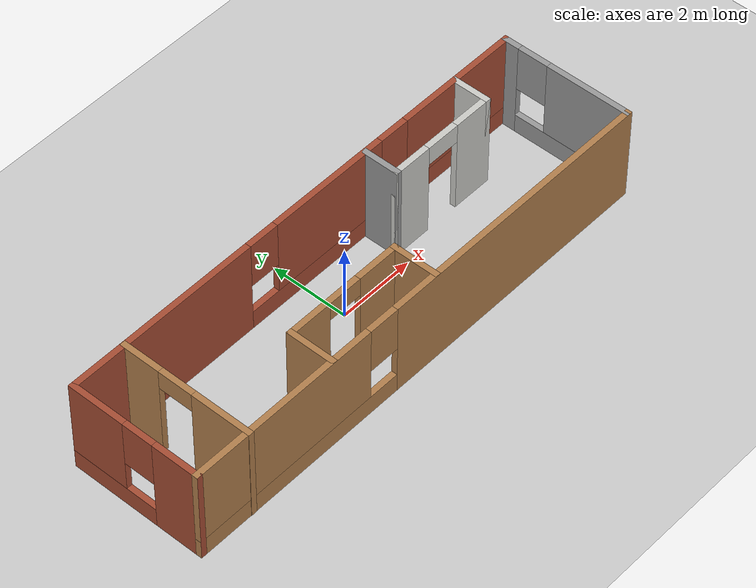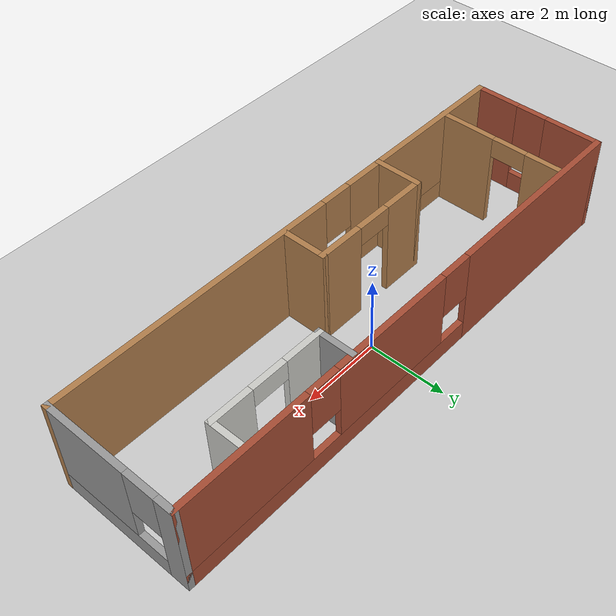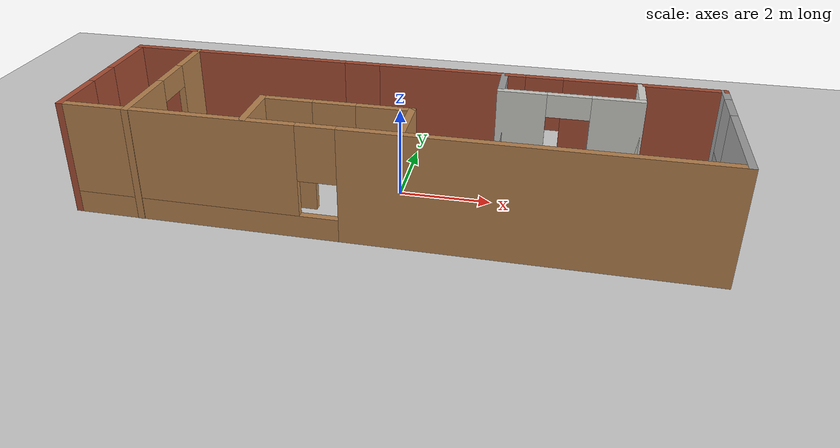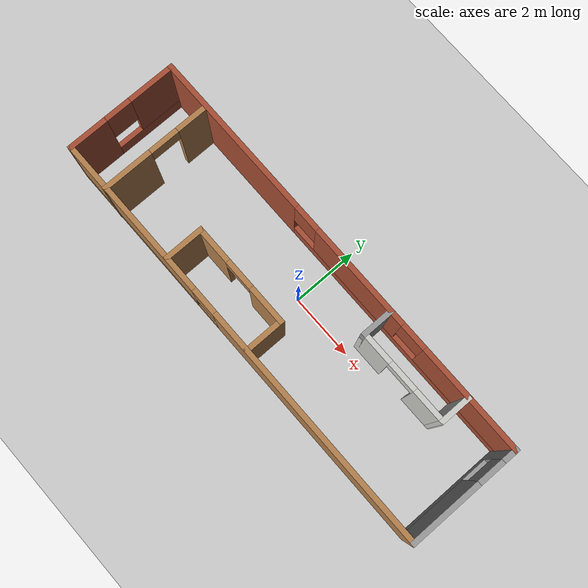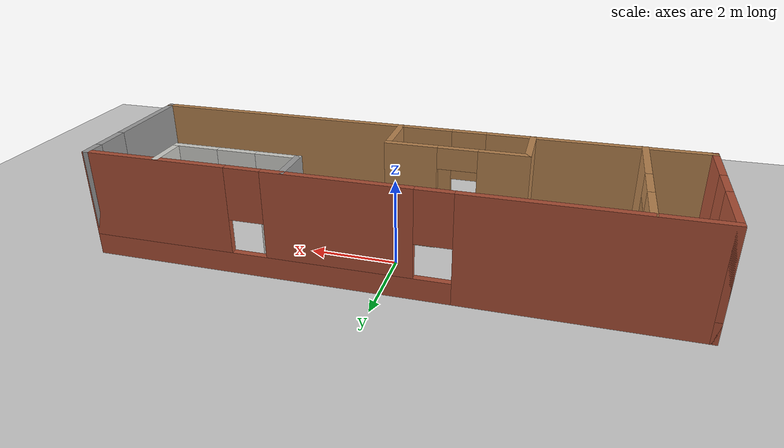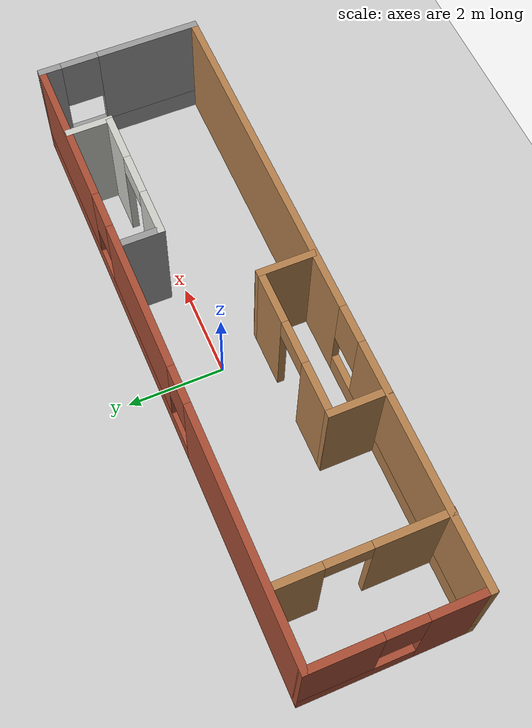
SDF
<sdf version="1.7">
 <world name="default">
  <light name="sun" type="directional">
   <pose>0 0 10 0 -0 0</pose>
   <diffuse>0.8 0.8 0.8 1</diffuse>
   <specular>0.2 0.2 0.2 1</specular>
   <attenuation>
    <range>1000</range>
    <constant>0.9</constant>
    <linear>0.01</linear>
    <quadratic>0.001</quadratic>
   </attenuation>
   <direction>-0.5 0.1 -0.9</direction>
   <spot><inner_angle>0</inner_angle><outer_angle>0</outer_angle><falloff>0</falloff></spot>
  </light>
  <model name="ground_plane">
   <static>1</static>
   <link name="link">
    <collision name="collision">
     <geometry><plane><normal>0 0 1</normal><size>100 100</size></plane></geometry>
     <surface>
      <contact><collide_bitmask>65535</collide_bitmask></contact>
      <friction><ode><mu>100</mu><mu2>50</mu2></ode></friction>
     </surface>
    </collision>
    <visual name="visual">
     <cast_shadows>0</cast_shadows>
     <geometry><plane><normal>0 0 1</normal><size>100 100</size></plane></geometry>
     <material>
      <script><uri>file://media/materials/scripts/gazebo.material</uri><name>Gazebo/Grey</name></script>
     </material>
    </visual>
   </link>
  </model>
  <gravity>0 0 -9.8</gravity>
  <magnetic_field>6e-06 2.3e-05 -4.2e-05</magnetic_field>
  <atmosphere type="adiabatic"/>
  <physics type="ode">
   <max_step_size>0.001</max_step_size>
   <real_time_factor>1</real_time_factor>
   <real_time_update_rate>1000</real_time_update_rate>
  </physics>
  <scene><ambient>0.4 0.4 0.4 1</ambient><background>0.7 0.7 0.7 1</background><shadows>1</shadows></scene>
  <spherical_coordinates>
   <surface_model>EARTH_WGS84</surface_model>
   <latitude_deg>0</latitude_deg>
   <longitude_deg>0</longitude_deg>
   <elevation>0</elevation>
   <heading_deg>0</heading_deg>
  </spherical_coordinates>
  <model name="Untitled">
   <pose>0.028454 -0.043117 0 0 -0 0</pose>
   <link name="Wall_0">
    <pose>-0 1.3025 0 0 -0 0</pose>
    <visual name="Wall_0_Visual_0">
     <pose>-4.0875 0 1.25 0 -0 0</pose>
     <geometry><box><size>5.075 0.15 2.5</size></box></geometry>
     <material>
      <script><uri>file://media/materials/scripts/gazebo.material</uri><name>Gazebo/Bricks</name></script>
      <ambient>1 1 1 1</ambient>
     </material>
     <meta><layer>0</layer></meta>
    </visual>
    <collision name="Wall_0_Collision_0">
     <geometry><box><size>5.075 0.15 2.5</size></box></geometry>
     <pose>-4.0875 0 1.25 0 -0 0</pose>
    </collision>
    <visual name="Wall_0_Visual_1">
     <pose>2.5375 0 0.25 0 -0 0</pose>
     <geometry><box><size>8.175 0.15 0.5</size></box></geometry>
     <material>
      <script><uri>file://media/materials/scripts/gazebo.material</uri><name>Gazebo/Bricks</name></script>
      <ambient>1 1 1 1</ambient>
     </material>
     <meta><layer>0</layer></meta>
    </visual>
    <collision name="Wall_0_Collision_1">
     <geometry><box><size>8.175 0.15 0.5</size></box></geometry>
     <pose>2.5375 0 0.25 0 -0 0</pose>
    </collision>
    <visual name="Wall_0_Visual_2">
     <pose>0.86 0 1.5 0 -0 0</pose>
     <geometry><box><size>3.22 0.15 2</size></box></geometry>
     <material>
      <script><uri>file://media/materials/scripts/gazebo.material</uri><name>Gazebo/Bricks</name></script>
      <ambient>1 1 1 1</ambient>
     </material>
     <meta><layer>0</layer></meta>
    </visual>
    <collision name="Wall_0_Collision_2">
     <geometry><box><size>3.22 0.15 2</size></box></geometry>
     <pose>0.86 0 1.5 0 -0 0</pose>
    </collision>
    <visual name="Wall_0_Visual_3">
     <pose>4.9475 0 1.5 0 -0 0</pose>
     <geometry><box><size>3.355 0.15 2</size></box></geometry>
     <material>
      <script><uri>file://media/materials/scripts/gazebo.material</uri><name>Gazebo/Bricks</name></script>
      <ambient>1 1 1 1</ambient>
     </material>
     <meta><layer>0</layer></meta>
    </visual>
    <collision name="Wall_0_Collision_3">
     <geometry><box><size>3.355 0.15 2</size></box></geometry>
     <pose>4.9475 0 1.5 0 -0 0</pose>
    </collision>
    <visual name="Wall_0_Visual_4">
     <pose>-1.15 0 1.9 0 -0 0</pose>
     <geometry><box><size>0.8 0.15 1.2</size></box></geometry>
     <material>
      <script><uri>file://media/materials/scripts/gazebo.material</uri><name>Gazebo/Bricks</name></script>
      <ambient>1 1 1 1</ambient>
     </material>
     <meta><layer>0</layer></meta>
    </visual>
    <collision name="Wall_0_Collision_4">
     <geometry><box><size>0.8 0.15 1.2</size></box></geometry>
     <pose>-1.15 0 1.9 0 -0 0</pose>
    </collision>
    <visual name="Wall_0_Visual_5">
     <pose>2.87 0 1.9 0 -0 0</pose>
     <geometry><box><size>0.8 0.15 1.2</size></box></geometry>
     <material>
      <script><uri>file://media/materials/scripts/gazebo.material</uri><name>Gazebo/Bricks</name></script>
      <ambient>1 1 1 1</ambient>
     </material>
     <meta><layer>0</layer></meta>
    </visual>
    <collision name="Wall_0_Collision_5">
     <geometry><box><size>0.8 0.15 1.2</size></box></geometry>
     <pose>2.87 0 1.9 0 -0 0</pose>
    </collision>
   </link>
   <link name="Wall_1">
    <pose>6.55 -0.3725 0 0 -0 -1.5708</pose>
    <visual name="Wall_1_Visual_0">
     <pose>-1.5075 0 1.25 0 -0 0</pose>
     <geometry><box><size>0.485 0.15 2.5</size></box></geometry>
     <material>
      <script><uri>file://media/materials/scripts/gazebo.material</uri><name>Gazebo/Grey</name></script>
      <ambient>1 1 1 1</ambient>
     </material>
     <meta><layer>0</layer></meta>
    </visual>
    <collision name="Wall_1_Collision_0">
     <geometry><box><size>0.485 0.15 2.5</size></box></geometry>
     <pose>-1.5075 0 1.25 0 -0 0</pose>
    </collision>
    <visual name="Wall_1_Visual_1">
     <pose>0.2425 0 0.25 0 -0 0</pose>
     <geometry><box><size>3.015 0.15 0.5</size></box></geometry>
     <material>
      <script><uri>file://media/materials/scripts/gazebo.material</uri><name>Gazebo/Grey</name></script>
      <ambient>1 1 1 1</ambient>
     </material>
     <meta><layer>0</layer></meta>
    </visual>
    <collision name="Wall_1_Collision_1">
     <geometry><box><size>3.015 0.15 0.5</size></box></geometry>
     <pose>0.2425 0 0.25 0 -0 0</pose>
    </collision>
    <visual name="Wall_1_Visual_2">
     <pose>0.6425 0 1.5 0 -0 0</pose>
     <geometry><box><size>2.215 0.15 2</size></box></geometry>
     <material>
      <script><uri>file://media/materials/scripts/gazebo.material</uri><name>Gazebo/Grey</name></script>
      <ambient>1 1 1 1</ambient>
     </material>
     <meta><layer>0</layer></meta>
    </visual>
    <collision name="Wall_1_Collision_2">
     <geometry><box><size>2.215 0.15 2</size></box></geometry>
     <pose>0.6425 0 1.5 0 -0 0</pose>
    </collision>
    <visual name="Wall_1_Visual_3">
     <pose>-0.865 0 1.9 0 -0 0</pose>
     <geometry><box><size>0.8 0.15 1.2</size></box></geometry>
     <material>
      <script><uri>file://media/materials/scripts/gazebo.material</uri><name>Gazebo/Grey</name></script>
      <ambient>1 1 1 1</ambient>
     </material>
     <meta><layer>0</layer></meta>
    </visual>
    <collision name="Wall_1_Collision_3">
     <geometry><box><size>0.8 0.15 1.2</size></box></geometry>
     <pose>-0.865 0 1.9 0 -0 0</pose>
    </collision>
   </link>
   <link name="Wall_11">
    <collision name="Wall_11_Collision">
     <geometry><box><size>1 0.15 2.5</size></box></geometry>
     <pose>0 0 1.25 0 -0 0</pose>
    </collision>
    <visual name="Wall_11_Visual">
     <pose>0 0 1.25 0 -0 0</pose>
     <geometry><box><size>1 0.15 2.5</size></box></geometry>
     <material>
      <script><uri>file://media/materials/scripts/gazebo.material</uri><name>Gazebo/Grey</name></script>
      <ambient>1 1 1 1</ambient>
     </material>
     <meta><layer>0</layer></meta>
    </visual>
    <pose>2.02 0.8575 0 0 -0 -1.5708</pose>
   </link>
   <link name="Wall_12">
    <pose>3.445 0.4325 0 0 -0 0</pose>
    <visual name="Wall_12_Visual_0">
     <pose>-0.9875 0 1.25 0 -0 0</pose>
     <geometry><box><size>1.025 0.15 2.5</size></box></geometry>
     <material>
      <script><uri>file://media/materials/scripts/gazebo.material</uri><name>Gazebo/CeilingTiled</name></script>
      <ambient>1 1 1 1</ambient>
     </material>
     <meta><layer>0</layer></meta>
    </visual>
    <collision name="Wall_12_Collision_0">
     <geometry><box><size>1.025 0.15 2.5</size></box></geometry>
     <pose>-0.9875 0 1.25 0 -0 0</pose>
    </collision>
    <visual name="Wall_12_Visual_1">
     <pose>0.9625 0 1.25 0 -0 0</pose>
     <geometry><box><size>1.075 0.15 2.5</size></box></geometry>
     <material>
      <script><uri>file://media/materials/scripts/gazebo.material</uri><name>Gazebo/CeilingTiled</name></script>
      <ambient>1 1 1 1</ambient>
     </material>
     <meta><layer>0</layer></meta>
    </visual>
    <collision name="Wall_12_Collision_1">
     <geometry><box><size>1.075 0.15 2.5</size></box></geometry>
     <pose>0.9625 0 1.25 0 -0 0</pose>
    </collision>
    <visual name="Wall_12_Visual_2">
     <pose>-0.025 0 2.25 0 -0 0</pose>
     <geometry><box><size>0.9 0.15 0.5</size></box></geometry>
     <material>
      <script><uri>file://media/materials/scripts/gazebo.material</uri><name>Gazebo/CeilingTiled</name></script>
      <ambient>1 1 1 1</ambient>
     </material>
     <meta><layer>0</layer></meta>
    </visual>
    <collision name="Wall_12_Collision_2">
     <geometry><box><size>0.9 0.15 0.5</size></box></geometry>
     <pose>-0.025 0 2.25 0 -0 0</pose>
    </collision>
   </link>
   <link name="Wall_13">
    <collision name="Wall_13_Collision">
     <geometry><box><size>1 0.15 2.5</size></box></geometry>
     <pose>0 0 1.25 0 -0 0</pose>
    </collision>
    <visual name="Wall_13_Visual">
     <pose>0 0 1.25 0 -0 0</pose>
     <geometry><box><size>1 0.15 2.5</size></box></geometry>
     <material>
      <script><uri>file://media/materials/scripts/gazebo.material</uri><name>Gazebo/CeilingTiled</name></script>
      <ambient>1 1 1 1</ambient>
     </material>
     <meta><layer>0</layer></meta>
    </visual>
    <pose>4.87 0.8575 0 0 -0 1.5708</pose>
   </link>
   <link name="Wall_2">
    <pose>-0 -2.0475 0 0 -0 3.14159</pose>
    <visual name="Wall_2_Visual_0">
     <pose>-2.8975 0 1.25 0 -0 0</pose>
     <geometry><box><size>7.455 0.15 2.5</size></box></geometry>
     <material>
      <script><uri>file://media/materials/scripts/gazebo.material</uri><name>Gazebo/Wood</name></script>
      <ambient>1 1 1 1</ambient>
     </material>
     <meta><layer>0</layer></meta>
    </visual>
    <collision name="Wall_2_Collision_0">
     <geometry><box><size>7.455 0.15 2.5</size></box></geometry>
     <pose>-2.8975 0 1.25 0 -0 0</pose>
    </collision>
    <visual name="Wall_2_Visual_1">
     <pose>3.7275 0 0.25 0 -0 0</pose>
     <geometry><box><size>5.795 0.15 0.5</size></box></geometry>
     <material>
      <script><uri>file://media/materials/scripts/gazebo.material</uri><name>Gazebo/Wood</name></script>
      <ambient>1 1 1 1</ambient>
     </material>
     <meta><layer>0</layer></meta>
    </visual>
    <collision name="Wall_2_Collision_1">
     <geometry><box><size>5.795 0.15 0.5</size></box></geometry>
     <pose>3.7275 0 0.25 0 -0 0</pose>
    </collision>
    <visual name="Wall_2_Visual_2">
     <pose>4.1275 0 1.5 0 -0 0</pose>
     <geometry><box><size>4.995 0.15 2</size></box></geometry>
     <material>
      <script><uri>file://media/materials/scripts/gazebo.material</uri><name>Gazebo/Wood</name></script>
      <ambient>1 1 1 1</ambient>
     </material>
     <meta><layer>0</layer></meta>
    </visual>
    <collision name="Wall_2_Collision_2">
     <geometry><box><size>4.995 0.15 2</size></box></geometry>
     <pose>4.1275 0 1.5 0 -0 0</pose>
    </collision>
    <visual name="Wall_2_Visual_3">
     <pose>1.23 0 1.9 0 -0 0</pose>
     <geometry><box><size>0.8 0.15 1.2</size></box></geometry>
     <material>
      <script><uri>file://media/materials/scripts/gazebo.material</uri><name>Gazebo/Wood</name></script>
      <ambient>1 1 1 1</ambient>
     </material>
     <meta><layer>0</layer></meta>
    </visual>
    <collision name="Wall_2_Collision_3">
     <geometry><box><size>0.8 0.15 1.2</size></box></geometry>
     <pose>1.23 0 1.9 0 -0 0</pose>
    </collision>
   </link>
   <link name="Wall_3">
    <pose>-6.55 -0.3725 0 0 -0 1.5708</pose>
    <visual name="Wall_3_Visual_0">
     <pose>-1.1375 0 1.25 0 -0 0</pose>
     <geometry><box><size>1.225 0.15 2.5</size></box></geometry>
     <material>
      <script><uri>file://media/materials/scripts/gazebo.material</uri><name>Gazebo/Bricks</name></script>
      <ambient>1 1 1 1</ambient>
     </material>
     <meta><layer>0</layer></meta>
    </visual>
    <collision name="Wall_3_Collision_0">
     <geometry><box><size>1.225 0.15 2.5</size></box></geometry>
     <pose>-1.1375 0 1.25 0 -0 0</pose>
    </collision>
    <visual name="Wall_3_Visual_1">
     <pose>0.6125 0 0.25 0 -0 0</pose>
     <geometry><box><size>2.275 0.15 0.5</size></box></geometry>
     <material>
      <script><uri>file://media/materials/scripts/gazebo.material</uri><name>Gazebo/Bricks</name></script>
      <ambient>1 1 1 1</ambient>
     </material>
     <meta><layer>0</layer></meta>
    </visual>
    <collision name="Wall_3_Collision_1">
     <geometry><box><size>2.275 0.15 0.5</size></box></geometry>
     <pose>0.6125 0 0.25 0 -0 0</pose>
    </collision>
    <visual name="Wall_3_Visual_2">
     <pose>1.0125 0 1.5 0 -0 0</pose>
     <geometry><box><size>1.475 0.15 2</size></box></geometry>
     <material>
      <script><uri>file://media/materials/scripts/gazebo.material</uri><name>Gazebo/Bricks</name></script>
      <ambient>1 1 1 1</ambient>
     </material>
     <meta><layer>0</layer></meta>
    </visual>
    <collision name="Wall_3_Collision_2">
     <geometry><box><size>1.475 0.15 2</size></box></geometry>
     <pose>1.0125 0 1.5 0 -0 0</pose>
    </collision>
    <visual name="Wall_3_Visual_3">
     <pose>-0.125 0 1.9 0 -0 0</pose>
     <geometry><box><size>0.8 0.15 1.2</size></box></geometry>
     <material>
      <script><uri>file://media/materials/scripts/gazebo.material</uri><name>Gazebo/Bricks</name></script>
      <ambient>1 1 1 1</ambient>
     </material>
     <meta><layer>0</layer></meta>
    </visual>
    <collision name="Wall_3_Collision_3">
     <geometry><box><size>0.8 0.15 1.2</size></box></geometry>
     <pose>-0.125 0 1.9 0 -0 0</pose>
    </collision>
   </link>
   <link name="Wall_5">
    <pose>-5.12 -0.3825 0 0 -0 -1.5708</pose>
    <visual name="Wall_5_Visual_0">
     <pose>-1.2225 0 1.25 0 -0 0</pose>
     <geometry><box><size>1.055 0.15 2.5</size></box></geometry>
     <material>
      <script><uri>file://media/materials/scripts/gazebo.material</uri><name>Gazebo/Wood</name></script>
      <ambient>1 1 1 1</ambient>
     </material>
     <meta><layer>0</layer></meta>
    </visual>
    <collision name="Wall_5_Collision_0">
     <geometry><box><size>1.055 0.15 2.5</size></box></geometry>
     <pose>-1.2225 0 1.25 0 -0 0</pose>
    </collision>
    <visual name="Wall_5_Visual_1">
     <pose>0.9775 0 1.25 0 -0 0</pose>
     <geometry><box><size>1.545 0.15 2.5</size></box></geometry>
     <material>
      <script><uri>file://media/materials/scripts/gazebo.material</uri><name>Gazebo/Wood</name></script>
      <ambient>1 1 1 1</ambient>
     </material>
     <meta><layer>0</layer></meta>
    </visual>
    <collision name="Wall_5_Collision_1">
     <geometry><box><size>1.545 0.15 2.5</size></box></geometry>
     <pose>0.9775 0 1.25 0 -0 0</pose>
    </collision>
    <visual name="Wall_5_Visual_2">
     <pose>-0.245 0 2.25 0 -0 0</pose>
     <geometry><box><size>0.9 0.15 0.5</size></box></geometry>
     <material>
      <script><uri>file://media/materials/scripts/gazebo.material</uri><name>Gazebo/Wood</name></script>
      <ambient>1 1 1 1</ambient>
     </material>
     <meta><layer>0</layer></meta>
    </visual>
    <collision name="Wall_5_Collision_2">
     <geometry><box><size>0.9 0.15 0.5</size></box></geometry>
     <pose>-0.245 0 2.25 0 -0 0</pose>
    </collision>
   </link>
   <link name="Wall_7">
    <collision name="Wall_7_Collision">
     <geometry><box><size>1.25 0.15 2.5</size></box></geometry>
     <pose>0 0 1.25 0 -0 0</pose>
    </collision>
    <visual name="Wall_7_Visual">
     <pose>0 0 1.25 0 -0 0</pose>
     <geometry><box><size>1.25 0.15 2.5</size></box></geometry>
     <material>
      <script><uri>file://media/materials/scripts/gazebo.material</uri><name>Gazebo/Wood</name></script>
      <ambient>1 1 1 1</ambient>
     </material>
     <meta><layer>0</layer></meta>
    </visual>
    <pose>-2.69 -1.4875 0 0 -0 1.5708</pose>
   </link>
   <link name="Wall_8">
    <pose>-1.14 -0.9375 0 0 -0 0</pose>
    <visual name="Wall_8_Visual_0">
     <pose>-1.0525 0 1.25 0 -0 0</pose>
     <geometry><box><size>1.145 0.15 2.5</size></box></geometry>
     <material>
      <script><uri>file://media/materials/scripts/gazebo.material</uri><name>Gazebo/Wood</name></script>
      <ambient>1 1 1 1</ambient>
     </material>
     <meta><layer>0</layer></meta>
    </visual>
    <collision name="Wall_8_Collision_0">
     <geometry><box><size>1.145 0.15 2.5</size></box></geometry>
     <pose>-1.0525 0 1.25 0 -0 0</pose>
    </collision>
    <visual name="Wall_8_Visual_1">
     <pose>1.0225 0 1.25 0 -0 0</pose>
     <geometry><box><size>1.205 0.15 2.5</size></box></geometry>
     <material>
      <script><uri>file://media/materials/scripts/gazebo.material</uri><name>Gazebo/Wood</name></script>
      <ambient>1 1 1 1</ambient>
     </material>
     <meta><layer>0</layer></meta>
    </visual>
    <collision name="Wall_8_Collision_1">
     <geometry><box><size>1.205 0.15 2.5</size></box></geometry>
     <pose>1.0225 0 1.25 0 -0 0</pose>
    </collision>
    <visual name="Wall_8_Visual_2">
     <pose>-0.03 0 2.25 0 -0 0</pose>
     <geometry><box><size>0.9 0.15 0.5</size></box></geometry>
     <material>
      <script><uri>file://media/materials/scripts/gazebo.material</uri><name>Gazebo/Wood</name></script>
      <ambient>1 1 1 1</ambient>
     </material>
     <meta><layer>0</layer></meta>
    </visual>
    <collision name="Wall_8_Collision_2">
     <geometry><box><size>0.9 0.15 0.5</size></box></geometry>
     <pose>-0.03 0 2.25 0 -0 0</pose>
    </collision>
   </link>
   <link name="Wall_9">
    <collision name="Wall_9_Collision">
     <geometry><box><size>1.25 0.15 2.5</size></box></geometry>
     <pose>0 0 1.25 0 -0 0</pose>
    </collision>
    <visual name="Wall_9_Visual">
     <pose>0 0 1.25 0 -0 0</pose>
     <geometry><box><size>1.25 0.15 2.5</size></box></geometry>
     <material>
      <script><uri>file://media/materials/scripts/gazebo.material</uri><name>Gazebo/Wood</name></script>
      <ambient>1 1 1 1</ambient>
     </material>
     <meta><layer>0</layer></meta>
    </visual>
    <pose>0.41 -1.4875 0 0 -0 -1.5708</pose>
   </link>
   <static>1</static>
  </model>
 </world>
</sdf>
